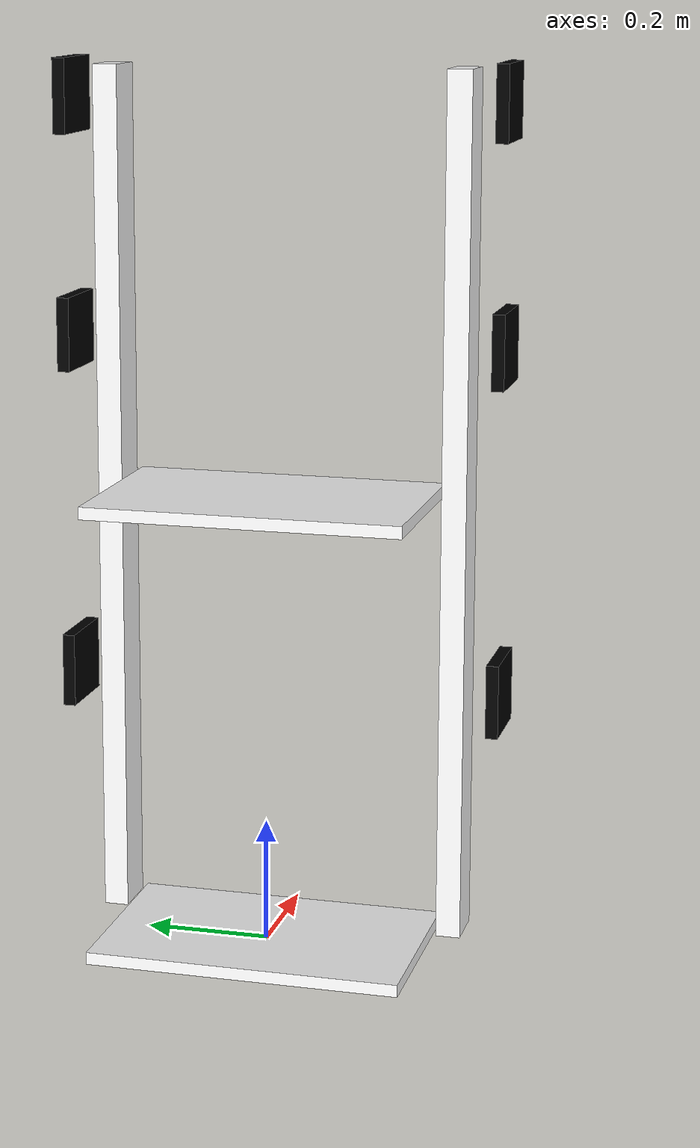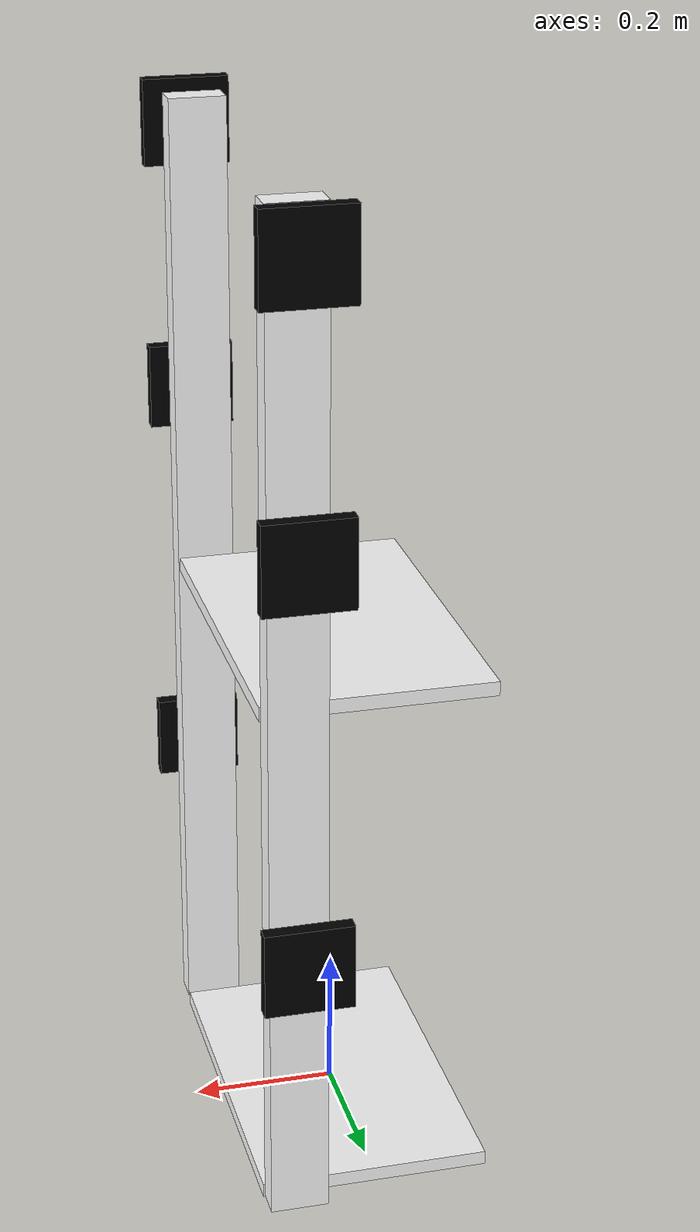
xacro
<?xml version="1.0" ?>
<robot xmlns:xacro="http://www.ros.org/wiki/xacro" name="zebraRFD8500reader">

<material name="Green">
      <color rgba="0.0 0.8 0.0 1.0"/>
</material>
<material name="Red">
      <color rgba="0.8 0.0 0.0 1.0"/>
</material>
<material name="White">
      <color rgba="1.0 1.0 1.0 1.0"/>
</material>
<material name="Blue">
      <color rgba="0.0 0.0 0.8 1.0"/>
</material>
<material name="Black">
      <color rgba="0.0 0.0 0.0 1.0"/>
</material>
<material name="Grey">
      <color rgba="0.25 0.25 0.25 1.0"/>
</material>
<material name="Silver">
      <color rgba="0.38 0.38 0.38 1.0"/>
</material>
<material name="Sandal">
      <color rgba="0.84 0.87 0.50 1.0"/>
</material>
<material name="LBlue">
      <color rgba="0.18 0.30 0.58 1.0"/>
</material>
<material name="Yellow">
      <color rgba="1 1 0 1.0"/>
</material>

<!--okapi cart links and jionts, okapicart_footprint is the root -->
<!-- camera jionts are not included here, it is provided in launch file by static_transform_publisher  -->

    <!-- okapicart_footprint is a visual plane of the okapi cart on the ground -->
    <link name="okapicart_footprint">
        <visual>
            <origin xyz="0 0 0" rpy="0 0 0" />
            <geometry>
                <box size="0.32 0.51 0.02" />
            </geometry>
            <material name="White"/>
        </visual>
        <collision>
        <origin xyz="0 0 0.017" rpy="0 0 0" />
            <geometry>
                <box size="0.02 0.01 0.01" />
            </geometry>
        </collision>
    </link>

    <!-- okapicart_basket is a battom plane of the basket of the okapi cart -->
    <link name="okapicart_basket">
        <visual>
            <origin xyz="0 0 0" rpy="0 0 0" />
            <geometry>
                <box size="0.32 0.51 0.02" />
            </geometry>
            <material name="White"/>
        </visual>
        <collision>
        <origin xyz="0 0 0.017" rpy="0 0 0" />
            <geometry>
                <box size="0.02 0.01 0.01" />
            </geometry>
        </collision>
    </link>

    <joint name="basket_footprint_joint" type="fixed">
            <origin xyz="0.00 0.0 0.73" rpy="0 0 0" />
            <parent link="okapicart_footprint" />
             <child link="okapicart_basket" />
    </joint>

    <link name="RFID_antena_1">
        <visual>
            <origin xyz="-0.015 0 0" rpy="0 0 0" />
            <geometry>
                <box size="0.02 0.12 0.12" />
            </geometry>
            <material name="Black"/>
        </visual>
        <collision>
        <origin xyz="0 0 0.017" rpy="0 0 0" />
        <geometry>
            <box size="0.02 0.01 0.01" />
        </geometry>
        </collision>
    </link>

    <joint name="RFID_antena_1_basket_joint" type="fixed">
            <origin xyz="0.12 -0.37 0.41" rpy="0 0 -1.57" />
            <parent link="okapicart_footprint" />
            <child link="RFID_antena_1" />
    </joint>

    <link name="RFID_antena_2">
        <visual>
            <origin xyz="-0.015 0 0" rpy="0 0 0" />
            <geometry>
                <box size="0.02 0.12 0.12" />
            </geometry>
            <material name="Black"/>
        </visual>
        <collision>
        <origin xyz="0 0 0.017" rpy="0 0 0" />
        <geometry>
            <box size="0.02 0.01 0.01" />
        </geometry>
        </collision>
    </link>

    <joint name="RFID_antena_2_basket_joint" type="fixed">
            <origin xyz="0.12 -0.37 0.97" rpy="0 0 -1.57" />
            <parent link="okapicart_footprint" />
            <child link="RFID_antena_2" />
    </joint>

    <link name="RFID_antena_3">
        <visual>
            <origin xyz="-0.015 0 0" rpy="0 0 0" />
            <geometry>
                <box size="0.02 0.12 0.12" />
            </geometry>
            <material name="Black"/>
        </visual>
        <collision>
        <origin xyz="0 0 0.017" rpy="0 0 0" />
        <geometry>
            <box size="0.02 0.01 0.01" />
        </geometry>
        </collision>
    </link>

    <joint name="RFID_antena_3_basket_joint" type="fixed">
            <origin xyz="0.12 -0.37 1.35" rpy="0 0 -1.57" />
            <parent link="okapicart_footprint" />
            <child link="RFID_antena_3" />
    </joint>

    <link name="RFID_antena_4">
        <visual>
            <origin xyz="-0.015 0 0" rpy="0 0 0" />
            <geometry>
                <box size="0.02 0.12 0.12" />
            </geometry>
            <material name="Black"/>
        </visual>
        <collision>
        <origin xyz="0 0 0.017" rpy="0 0 0" />
        <geometry>
            <box size="0.02 0.01 0.01" />
        </geometry>
        </collision>
    </link>

    <joint name="RFID_antena_4_basket_joint" type="fixed">
            <origin xyz="0.12 0.37 1.35" rpy="0 0 1.57" />
            <parent link="okapicart_footprint" />
            <child link="RFID_antena_4" />
    </joint>

    <link name="RFID_antena_5">
        <visual>
            <origin xyz="-0.015 0 0" rpy="0 0 0" />
            <geometry>
                <box size="0.02 0.12 0.12" />
            </geometry>
            <material name="Black"/>
        </visual>
        <collision>
        <origin xyz="0 0 0.017" rpy="0 0 0" />
        <geometry>
            <box size="0.02 0.01 0.01" />
        </geometry>
        </collision>
    </link>

    <joint name="RFID_antena_5_basket_joint" type="fixed">
            <origin xyz="0.12 0.37 0.97" rpy="0 0 1.57" />
            <parent link="okapicart_footprint" />
            <child link="RFID_antena_5" />
    </joint>

    <link name="RFID_antena_6">
        <visual>
            <origin xyz="-0.015 0 0" rpy="0 0 0" />
            <geometry>
                <box size="0.02 0.12 0.12" />
            </geometry>
            <material name="Black"/>
        </visual>
        <collision>
        <origin xyz="0 0 0.017" rpy="0 0 0" />
        <geometry>
            <box size="0.02 0.01 0.01" />
        </geometry>
        </collision>
    </link>

    <joint name="RFID_antena_6_basket_joint" type="fixed">
            <origin xyz="0.12 0.37 0.41" rpy="0 0 1.57" />   <!-- xyz="0.09 0 0.055" rpy="0 0.2356 0": rotation 15  Kinect 2 need add 0.05 as offset -->
            <parent link="okapicart_footprint" />
            <child link="RFID_antena_6" />
    </joint>

    <link name="antena_bar_1">
        <visual>
            <origin xyz="-0.015 0 0" rpy="0 0 0" />
            <geometry>
                <box size="0.04 0.08 1.4" />
            </geometry>
            <material name="White"/>
        </visual>
        <collision>
        <origin xyz="0 0 0.017" rpy="0 0 0" />
        <geometry>
            <box size="0.02 0.01 0.01" />
        </geometry>
        </collision>
    </link>

    <joint name="antena_bar_1_basket_joint" type="fixed">
            <origin xyz="0.12 0.30 0.7" rpy="0 0 1.57" />
            <parent link="okapicart_footprint" />
            <child link="antena_bar_1" />
    </joint>

    <link name="antena_bar_2">
        <visual>
            <origin xyz="-0.015 0 0" rpy="0 0 0" />
            <geometry>
                <box size="0.04 0.08 1.4" />
            </geometry>
            <material name="White"/>
        </visual>
        <collision>
        <origin xyz="0 0 0.017" rpy="0 0 0" />
        <geometry>
            <box size="0.02 0.01 0.01" />
        </geometry>
        </collision>
    </link>

    <joint name="antena_bar_2_basket_joint" type="fixed">
            <origin xyz="0.12 -0.30 0.7" rpy="0 0 -1.57" />
            <parent link="okapicart_footprint" />
            <child link="antena_bar_2" />
    </joint>

</robot>
